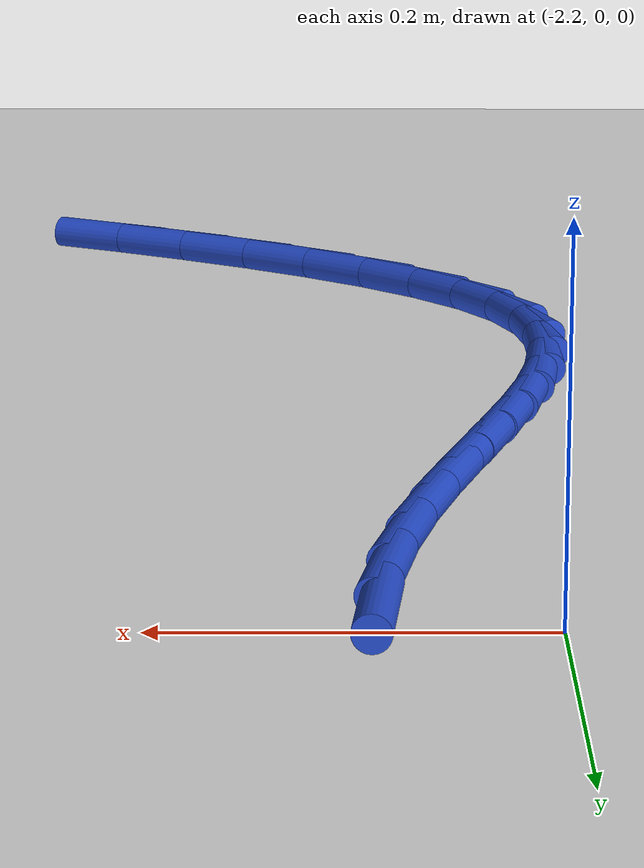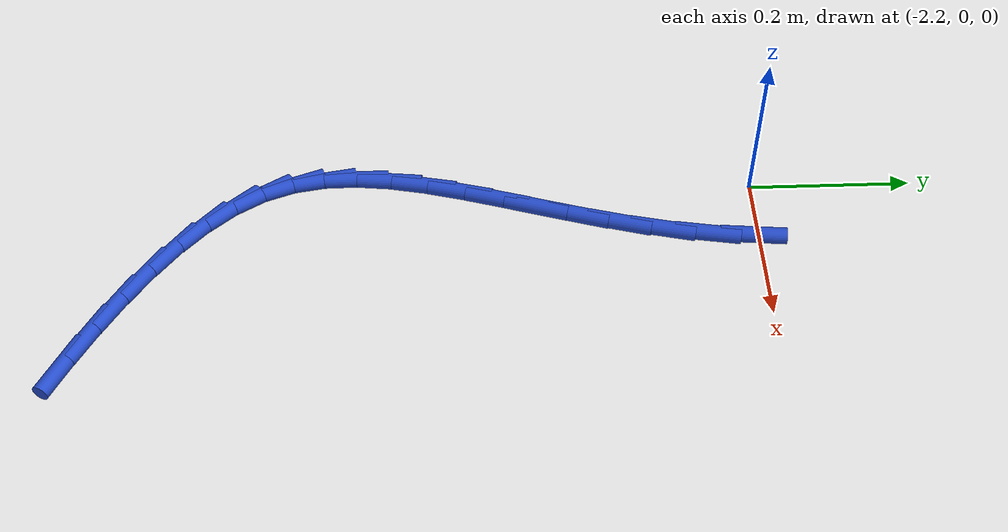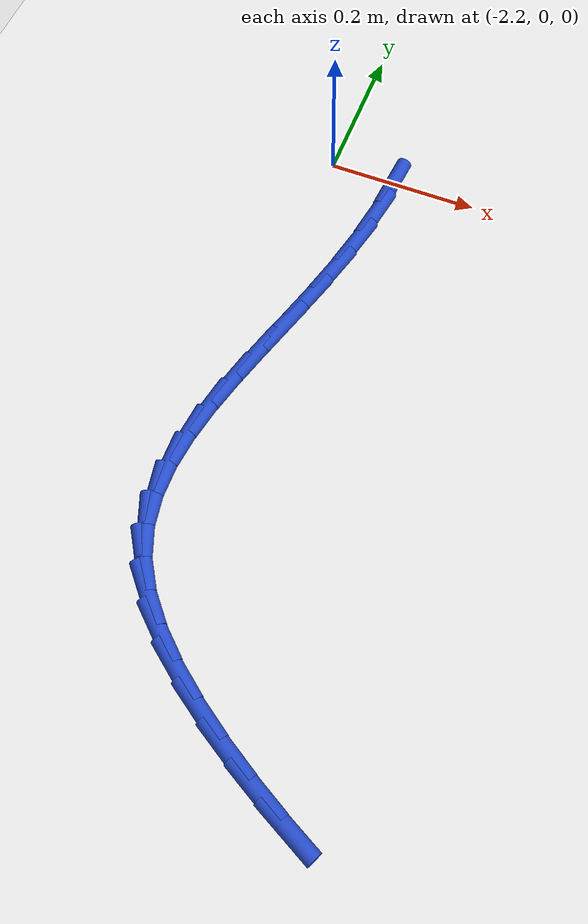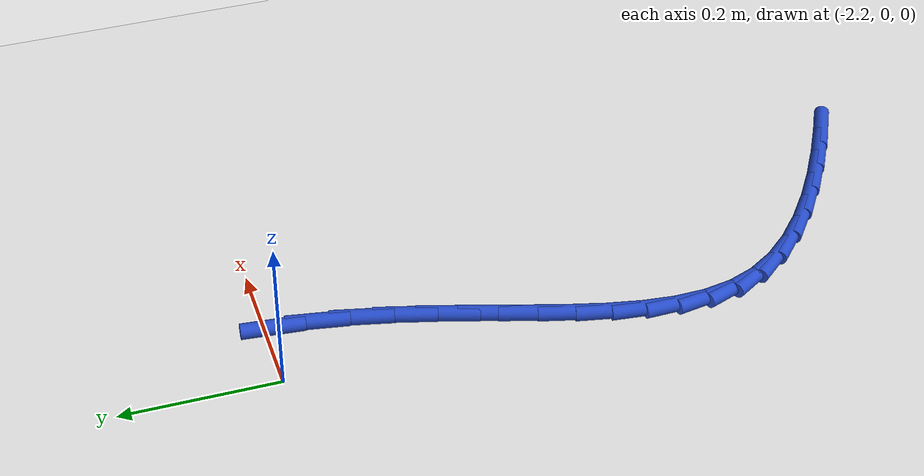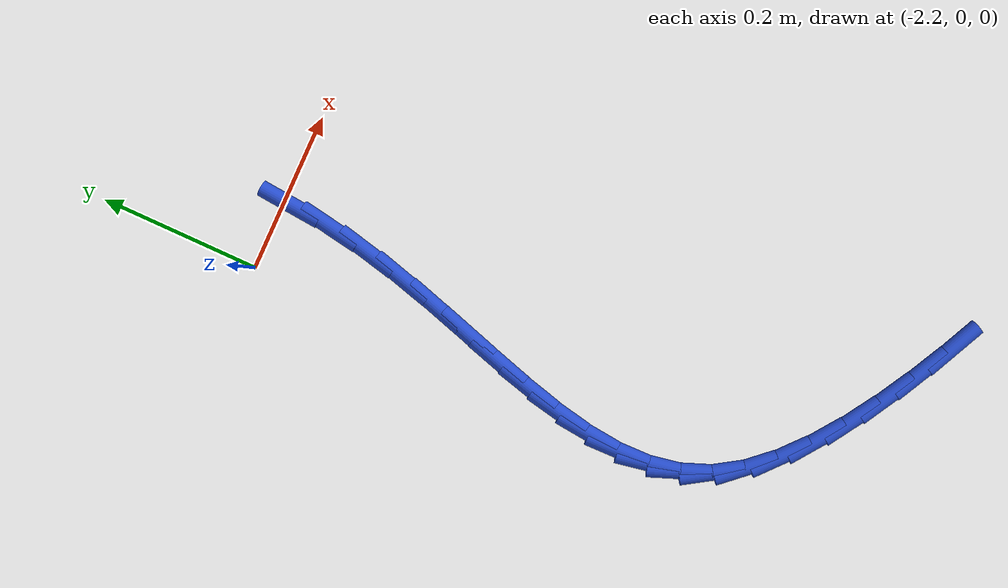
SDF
<sdf version="1.6">
 <world name="default">
  <model name="ground_plane">
   <static>1</static>
   <link name="link">
    <collision name="collision">
     <geometry><plane><normal>0 0 1</normal><size>100 100</size></plane></geometry>
     <surface><friction><ode><mu>100</mu><mu2>50</mu2></ode></friction></surface>
    </collision>
    <visual name="visual">
     <cast_shadows>0</cast_shadows>
     <geometry><plane><normal>0 0 1</normal><size>100 100</size></plane></geometry>
     <material>
      <script><uri>file://media/materials/scripts/gazebo.material</uri><name>Gazebo/WhiteGlow</name></script>
     </material>
    </visual>
   </link>
  </model>
  <model name="line">
   <link name="link_83">
    <pose>-2.112063090189937 -0.008628087605614452 0.01 0 1.57 1.4789272968518221</pose>
    <collision name="collision">
     <geometry><cylinder><radius>0.01</radius><length>0.08</length></cylinder></geometry>
    </collision>
    <visual name="visual">
     <material>
      <script><name>Gazebo/Blue</name><uri>file://media/materials/scripts/gazebo.material</uri></script>
     </material>
     <geometry><cylinder><radius>0.01</radius><length>0.08</length></cylinder></geometry>
    </visual>
   </link>
   <link name="link_84">
    <pose>-2.1170968778779704 -0.06326693739362797 0.01 0 1.57 1.4029781012695492</pose>
    <collision name="collision">
     <geometry><cylinder><radius>0.01</radius><length>0.08</length></cylinder></geometry>
    </collision>
    <visual name="visual">
     <material>
      <script><name>Gazebo/Blue</name><uri>file://media/materials/scripts/gazebo.material</uri></script>
     </material>
     <geometry><cylinder><radius>0.01</radius><length>0.08</length></cylinder></geometry>
    </visual>
   </link>
   <link name="link_85">
    <pose>-2.1261264372452247 -0.1165664726272321 0.01 0 1.57 1.34351869492063</pose>
    <collision name="collision">
     <geometry><cylinder><radius>0.01</radius><length>0.08</length></cylinder></geometry>
    </collision>
    <visual name="visual">
     <material>
      <script><name>Gazebo/Blue</name><uri>file://media/materials/scripts/gazebo.material</uri></script>
     </material>
     <geometry><cylinder><radius>0.01</radius><length>0.08</length></cylinder></geometry>
    </visual>
   </link>
   <link name="link_86">
    <pose>-2.1381364498505784 -0.16849636986547753 0.01 0 1.57 1.3009695591361665</pose>
    <collision name="collision">
     <geometry><cylinder><radius>0.01</radius><length>0.08</length></cylinder></geometry>
    </collision>
    <visual name="visual">
     <material>
      <script><name>Gazebo/Blue</name><uri>file://media/materials/scripts/gazebo.material</uri></script>
     </material>
     <geometry><cylinder><radius>0.01</radius><length>0.08</length></cylinder></geometry>
    </visual>
   </link>
   <link name="link_87">
    <pose>-2.152111597252912 -0.21902630566741607 0.01 0 1.57 1.275698658267824</pose>
    <collision name="collision">
     <geometry><cylinder><radius>0.01</radius><length>0.08</length></cylinder></geometry>
    </collision>
    <visual name="visual">
     <material>
      <script><name>Gazebo/Blue</name><uri>file://media/materials/scripts/gazebo.material</uri></script>
     </material>
     <geometry><cylinder><radius>0.01</radius><length>0.08</length></cylinder></geometry>
    </visual>
   </link>
   <link name="link_88">
    <pose>-2.1670365610111038 -0.2681259565920966 0.01 0 1.57 1.2684420197549964</pose>
    <collision name="collision">
     <geometry><cylinder><radius>0.01</radius><length>0.08</length></cylinder></geometry>
    </collision>
    <visual name="visual">
     <material>
      <script><name>Gazebo/Blue</name><uri>file://media/materials/scripts/gazebo.material</uri></script>
     </material>
     <geometry><cylinder><radius>0.01</radius><length>0.08</length></cylinder></geometry>
    </visual>
   </link>
   <link name="link_89">
    <pose>-2.1818960226840325 -0.31576499919857093 0.01 0 1.57 1.2806480017189783</pose>
    <collision name="collision">
     <geometry><cylinder><radius>0.01</radius><length>0.08</length></cylinder></geometry>
    </collision>
    <visual name="visual">
     <material>
      <script><name>Gazebo/Blue</name><uri>file://media/materials/scripts/gazebo.material</uri></script>
     </material>
     <geometry><cylinder><radius>0.01</radius><length>0.08</length></cylinder></geometry>
    </visual>
   </link>
   <link name="link_90">
    <pose>-2.195674663830577 -0.3619131100458897 0.01 0 1.57 1.3147599414934739</pose>
    <collision name="collision">
     <geometry><cylinder><radius>0.01</radius><length>0.08</length></cylinder></geometry>
    </collision>
    <visual name="visual">
     <material>
      <script><name>Gazebo/Blue</name><uri>file://media/materials/scripts/gazebo.material</uri></script>
     </material>
     <geometry><cylinder><radius>0.01</radius><length>0.08</length></cylinder></geometry>
    </visual>
   </link>
   <link name="link_91">
    <pose>-2.2073571660096176 -0.4065399656931038 0.01 0 1.57 1.3743833773882992</pose>
    <collision name="collision">
     <geometry><cylinder><radius>0.01</radius><length>0.08</length></cylinder></geometry>
    </collision>
    <visual name="visual">
     <material>
      <script><name>Gazebo/Blue</name><uri>file://media/materials/scripts/gazebo.material</uri></script>
     </material>
     <geometry><cylinder><radius>0.01</radius><length>0.08</length></cylinder></geometry>
    </visual>
   </link>
   <link name="link_92">
    <pose>-2.2159282107800315 -0.4496152426992647 0.01 0 1.57 1.4640951987459212</pose>
    <collision name="collision">
     <geometry><cylinder><radius>0.01</radius><length>0.08</length></cylinder></geometry>
    </collision>
    <visual name="visual">
     <material>
      <script><name>Gazebo/Blue</name><uri>file://media/materials/scripts/gazebo.material</uri></script>
     </material>
     <geometry><cylinder><radius>0.01</radius><length>0.08</length></cylinder></geometry>
    </visual>
   </link>
   <link name="link_93">
    <pose>-2.220372479700699 -0.4911086176234219 0.01 0 1.57 -1.5533004878645782</pose>
    <collision name="collision">
     <geometry><cylinder><radius>0.01</radius><length>0.08</length></cylinder></geometry>
    </collision>
    <visual name="visual">
     <material>
      <script><name>Gazebo/Blue</name><uri>file://media/materials/scripts/gazebo.material</uri></script>
     </material>
     <geometry><cylinder><radius>0.01</radius><length>0.08</length></cylinder></geometry>
    </visual>
   </link>
   <link name="link_94">
    <pose>-2.219674654330499 -0.5309897670246266 0.01 0 1.57 -1.3934053948105658</pose>
    <collision name="collision">
     <geometry><cylinder><radius>0.01</radius><length>0.08</length></cylinder></geometry>
    </collision>
    <visual name="visual">
     <material>
      <script><name>Gazebo/Blue</name><uri>file://media/materials/scripts/gazebo.material</uri></script>
     </material>
     <geometry><cylinder><radius>0.01</radius><length>0.08</length></cylinder></geometry>
    </visual>
   </link>
   <link name="link_95">
    <pose>-2.2128194162283097 -0.56922836746193 0.01 0 1.57 -1.2044750031890057</pose>
    <collision name="collision">
     <geometry><cylinder><radius>0.01</radius><length>0.08</length></cylinder></geometry>
    </collision>
    <visual name="visual">
     <material>
      <script><name>Gazebo/Blue</name><uri>file://media/materials/scripts/gazebo.material</uri></script>
     </material>
     <geometry><cylinder><radius>0.01</radius><length>0.08</length></cylinder></geometry>
    </visual>
   </link>
   <link name="link_96">
    <pose>-2.198791446953011 -0.605794095494383 0.01 0 1.57 -1.006541189802886</pose>
    <collision name="collision">
     <geometry><cylinder><radius>0.01</radius><length>0.08</length></cylinder></geometry>
    </collision>
    <visual name="visual">
     <material>
      <script><name>Gazebo/Blue</name><uri>file://media/materials/scripts/gazebo.material</uri></script>
     </material>
     <geometry><cylinder><radius>0.01</radius><length>0.08</length></cylinder></geometry>
    </visual>
   </link>
   <link name="link_97">
    <pose>-2.1767298111962927 -0.6406524867834478 0.01 0 1.57 -0.8435555921812127</pose>
    <collision name="collision">
     <geometry><cylinder><radius>0.01</radius><length>0.08</length></cylinder></geometry>
    </collision>
    <visual name="visual">
     <material>
      <script><name>Gazebo/Blue</name><uri>file://media/materials/scripts/gazebo.material</uri></script>
     </material>
     <geometry><cylinder><radius>0.01</radius><length>0.08</length></cylinder></geometry>
    </visual>
   </link>
   <link name="link_98">
    <pose>-2.147293633703229 -0.6737283056129502 0.01 0 1.57 -0.7239182108990122</pose>
    <collision name="collision">
     <geometry><cylinder><radius>0.01</radius><length>0.08</length></cylinder></geometry>
    </collision>
    <visual name="visual">
     <material>
      <script><name>Gazebo/Blue</name><uri>file://media/materials/scripts/gazebo.material</uri></script>
     </material>
     <geometry><cylinder><radius>0.01</radius><length>0.08</length></cylinder></geometry>
    </visual>
   </link>
   <link name="link_99">
    <pose>-2.112006329329417 -0.7049231340915082 0.01 0 1.57 -0.6355582206463786</pose>
    <collision name="collision">
     <geometry><cylinder><radius>0.01</radius><length>0.08</length></cylinder></geometry>
    </collision>
    <visual name="visual">
     <material>
      <script><name>Gazebo/Blue</name><uri>file://media/materials/scripts/gazebo.material</uri></script>
     </material>
     <geometry><cylinder><radius>0.01</radius><length>0.08</length></cylinder></geometry>
    </visual>
   </link>
   <link name="link_100">
    <pose>-2.072401288150592 -0.7341382867702402 0.01 0 1.57 -0.5694400913318506</pose>
    <collision name="collision">
     <geometry><cylinder><radius>0.01</radius><length>0.08</length></cylinder></geometry>
    </collision>
    <visual name="visual">
     <material>
      <script><name>Gazebo/Blue</name><uri>file://media/materials/scripts/gazebo.material</uri></script>
     </material>
     <geometry><cylinder><radius>0.01</radius><length>0.08</length></cylinder></geometry>
    </visual>
   </link>
   <link name="link_101">
    <pose>-2.0300119002424815 -0.7612750782002651 0.01 0 1.57 -0.51952812469838</pose>
    <collision name="collision">
     <geometry><cylinder><radius>0.01</radius><length>0.08</length></cylinder></geometry>
    </collision>
    <visual name="visual">
     <material>
      <script><name>Gazebo/Blue</name><uri>file://media/materials/scripts/gazebo.material</uri></script>
     </material>
     <geometry><cylinder><radius>0.01</radius><length>0.08</length></cylinder></geometry>
    </visual>
   </link>
   <link name="link_102">
    <pose>-1.986370418455247 -0.7862351878806679 0.01 0 1.57 -0.4805985953898349</pose>
    <collision name="collision">
     <geometry><cylinder><radius>0.01</radius><length>0.08</length></cylinder></geometry>
    </collision>
    <visual name="visual">
     <material>
      <script><name>Gazebo/Blue</name><uri>file://media/materials/scripts/gazebo.material</uri></script>
     </material>
     <geometry><cylinder><radius>0.01</radius><length>0.08</length></cylinder></geometry>
    </visual>
   </link>
   <link name="link_103">
    <pose>-1.9426213326285937 -0.8090447326487542 0.01 0 1.57 -0.4481128611136664</pose>
    <collision name="collision">
     <geometry><cylinder><radius>0.01</radius><length>0.08</length></cylinder></geometry>
    </collision>
    <visual name="visual">
     <material>
      <script><name>Gazebo/Blue</name><uri>file://media/materials/scripts/gazebo.material</uri></script>
     </material>
     <geometry><cylinder><radius>0.01</radius><length>0.08</length></cylinder></geometry>
    </visual>
   </link>
  </model>
 </world>
</sdf>
